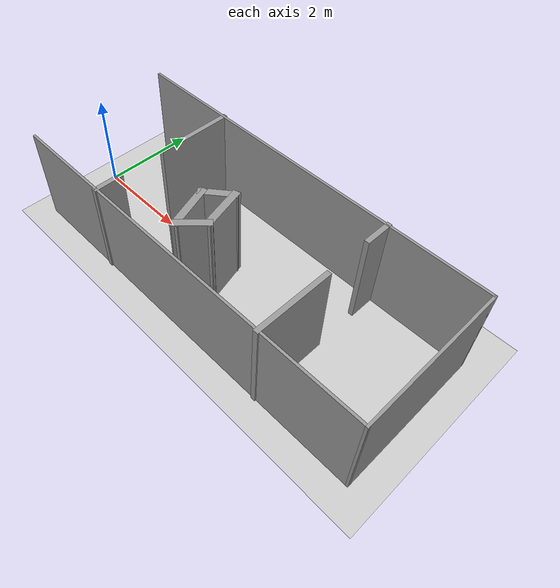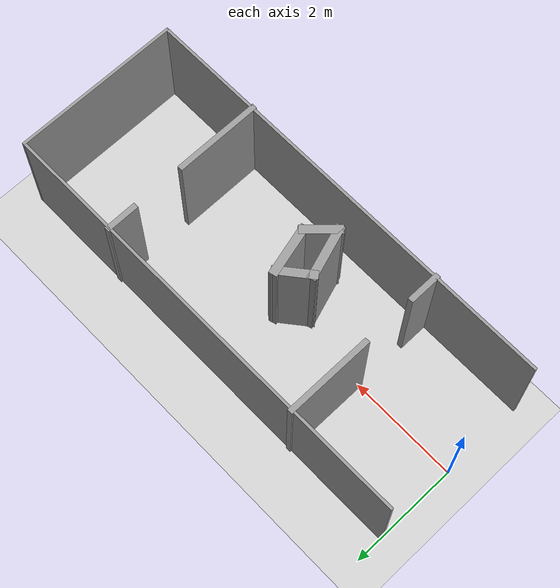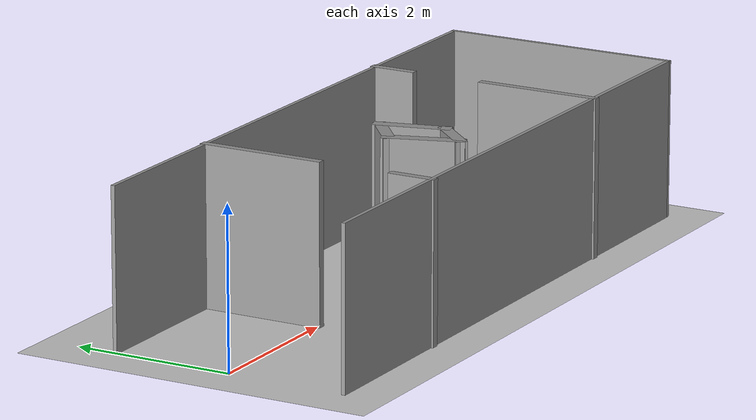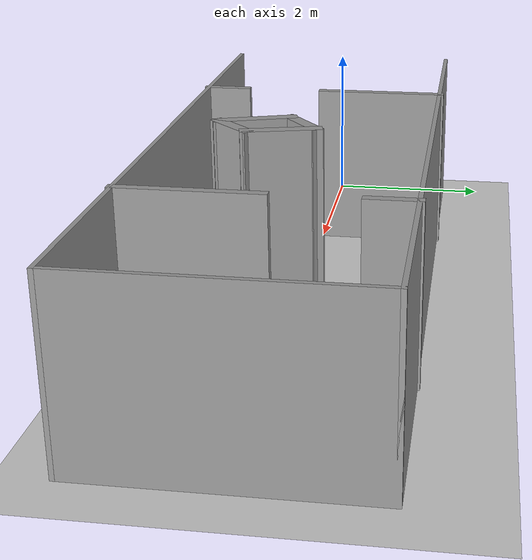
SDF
<?xml version="1.0" ?>
<sdf version="1.5">
  <world name="default">
    <!-- A global light source -->
    <include>
      <uri>model://sun</uri>
    </include>
    <!-- A ground plane -->
    <include>
      <uri>model://ground_plane</uri>
    </include>
    <include>
      <uri>model://asphalt_plane</uri>
    </include>
    <include>
    <name>group_A</name>
      <uri>model://group_A</uri>
      <pose>4 0 0 0 0 -1.57</pose>
    </include>
    <physics name='default_physics' default='0' type='ode'>
      <gravity>0 0 -9.8066</gravity>
      <ode>
        <solver>
          <type>quick</type>
          <iters>10</iters>
          <sor>1.3</sor>
          <use_dynamic_moi_rescaling>0</use_dynamic_moi_rescaling>
        </solver>
        <constraints>
          <cfm>0</cfm>
          <erp>0.2</erp>
          <contact_max_correcting_vel>100</contact_max_correcting_vel>
          <contact_surface_layer>0.001</contact_surface_layer>
        </constraints>
      </ode>
      <max_step_size>0.004</max_step_size>
      <real_time_factor>1</real_time_factor>
      <real_time_update_rate>250</real_time_update_rate>
      <magnetic_field>6.0e-6 2.3e-5 -4.2e-5</magnetic_field>
    </physics>
  </world>
</sdf>

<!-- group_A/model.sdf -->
<sdf version='1.6'>
  <model name='group_A'>
    <pose frame=''>0 4 0 0 -0 0</pose>
    <link name='Wall_0'>
      <collision name='Wall_0_Collision'>
        <geometry>
          <box>
            <size>8.05 0.05 2</size>
          </box>
        </geometry>
        <pose frame=''>0 0 1 0 -0 0</pose>
      </collision>
      <visual name='Wall_0_Visual'>
        <pose frame=''>0 0 1 0 -0 0</pose>
        <geometry>
          <box>
            <size>8.05 0.05 2</size>
          </box>
        </geometry>
        <material>
          <script>
            <uri>file://media/materials/scripts/gazebo.material</uri>
            <name>Gazebo/Grey</name>
          </script>
          <ambient>1 1 1 1</ambient>
        </material>
      </visual>
      <pose frame=''>-1.5 0 0 0 -0 1.5708</pose>
    </link>
    <link name='Wall_1'>
      <collision name='Wall_1_Collision'>
        <geometry>
          <box>
            <size>3.05004 0.05 2</size>
          </box>
        </geometry>
        <pose frame=''>0 0 1 0 -0 0</pose>
      </collision>
      <visual name='Wall_1_Visual'>
        <pose frame=''>0 0 1 0 -0 0</pose>
        <geometry>
          <box>
            <size>3.05004 0.05 2</size>
          </box>
        </geometry>
        <material>
          <script>
            <uri>file://media/materials/scripts/gazebo.material</uri>
            <name>Gazebo/Grey</name>
          </script>
          <ambient>1 1 1 1</ambient>
        </material>
      </visual>
      <pose frame=''>0 4 0 0 -0 0</pose>
    </link>
    <link name='Wall_10'>
      <collision name='Wall_10_Collision'>
        <geometry>
          <box>
            <size>1.6 0.1 2</size>
          </box>
        </geometry>
        <pose frame=''>0 0 1 0 -0 0</pose>
      </collision>
      <visual name='Wall_10_Visual'>
        <pose frame=''>0 0 1 0 -0 0</pose>
        <geometry>
          <box>
            <size>1.6 0.1 2</size>
          </box>
        </geometry>
        <material>
          <script>
            <uri>file://media/materials/scripts/gazebo.material</uri>
            <name>Gazebo/Grey</name>
          </script>
          <ambient>1 1 1 1</ambient>
        </material>
      </visual>
      <pose frame=''>0.75 2 0 0 -0 0</pose>
    </link>
    <link name='Wall_12'>
      <collision name='Wall_12_Collision'>
        <geometry>
          <box>
            <size>0.728011 0.15 2</size>
          </box>
        </geometry>
        <pose frame=''>0 0 1 0 -0 0</pose>
      </collision>
      <visual name='Wall_12_Visual'>
        <pose frame=''>0 0 1 0 -0 0</pose>
        <geometry>
          <box>
            <size>0.728011 0.15 2</size>
          </box>
        </geometry>
        <material>
          <script>
            <uri>file://media/materials/scripts/gazebo.material</uri>
            <name>Gazebo/Grey</name>
          </script>
          <ambient>1 1 1 1</ambient>
        </material>
      </visual>
      <pose frame=''>0.0225 -0.483 0 0 -0 2.25202</pose>
    </link>
    <link name='Wall_13'>
      <collision name='Wall_13_Collision'>
        <geometry>
          <box>
            <size>0.953171 0.15 2</size>
          </box>
        </geometry>
        <pose frame=''>0 0 1 0 -0 0</pose>
      </collision>
      <visual name='Wall_13_Visual'>
        <pose frame=''>0 0 1 0 -0 0</pose>
        <geometry>
          <box>
            <size>0.953171 0.15 2</size>
          </box>
        </geometry>
        <material>
          <script>
            <uri>file://media/materials/scripts/gazebo.material</uri>
            <name>Gazebo/Grey</name>
          </script>
          <ambient>1 1 1 1</ambient>
        </material>
      </visual>
      <pose frame=''>0.218 -0.15875 0 0 -0 0.251018</pose>
    </link>
    <link name='Wall_14'>
      <collision name='Wall_14_Collision'>
        <geometry>
          <box>
            <size>0.700204 0.15 2</size>
          </box>
        </geometry>
        <pose frame=''>0 0 1 0 -0 0</pose>
      </collision>
      <visual name='Wall_14_Visual'>
        <pose frame=''>0 0 1 0 -0 0</pose>
        <geometry>
          <box>
            <size>0.700204 0.15 2</size>
          </box>
        </geometry>
        <material>
          <script>
            <uri>file://media/materials/scripts/gazebo.material</uri>
            <name>Gazebo/Grey</name>
          </script>
          <ambient>1 1 1 1</ambient>
        </material>
      </visual>
      <pose frame=''>0.8065 -0.2485 0 0 0 -0.759697</pose>
    </link>
    <link name='Wall_15'>
      <collision name='Wall_15_Collision'>
        <geometry>
          <box>
            <size>1.0065 0.15 2</size>
          </box>
        </geometry>
        <pose frame=''>0 0 1 0 -0 0</pose>
      </collision>
      <visual name='Wall_15_Visual'>
        <pose frame=''>0 0 1 0 -0 0</pose>
        <geometry>
          <box>
            <size>1.0065 0.15 2</size>
          </box>
        </geometry>
        <material>
          <script>
            <uri>file://media/materials/scripts/gazebo.material</uri>
            <name>Gazebo/Grey</name>
          </script>
          <ambient>1 1 1 1</ambient>
        </material>
      </visual>
      <pose frame=''>0.5995 -0.57275 0 0 0 -2.8215</pose>
    </link>
    <link name='Wall_2'>
      <collision name='Wall_2_Collision'>
        <geometry>
          <box>
            <size>8.05 0.05 2</size>
          </box>
        </geometry>
        <pose frame=''>0 0 1 0 -0 0</pose>
      </collision>
      <visual name='Wall_2_Visual'>
        <pose frame=''>0 0 1 0 -0 0</pose>
        <geometry>
          <box>
            <size>8.05 0.05 2</size>
          </box>
        </geometry>
        <material>
          <script>
            <uri>file://media/materials/scripts/gazebo.material</uri>
            <name>Gazebo/Grey</name>
          </script>
          <ambient>1 1 1 1</ambient>
        </material>
      </visual>
      <pose frame=''>1.5 0 0 0 0 -1.5708</pose>
    </link>
    <link name='Wall_4'>
      <collision name='Wall_4_Collision'>
        <geometry>
          <box>
            <size>1.6 0.1 2</size>
          </box>
        </geometry>
        <pose frame=''>0 0 1 0 -0 0</pose>
      </collision>
      <visual name='Wall_4_Visual'>
        <pose frame=''>0 0 1 0 -0 0</pose>
        <geometry>
          <box>
            <size>1.6 0.1 2</size>
          </box>
        </geometry>
        <material>
          <script>
            <uri>file://media/materials/scripts/gazebo.material</uri>
            <name>Gazebo/Grey</name>
          </script>
          <ambient>1 1 1 1</ambient>
        </material>
      </visual>
      <pose frame=''>-0.75 -2 0 0 -0 0</pose>
    </link>
    <link name='Wall_6'>
      <collision name='Wall_6_Collision'>
        <geometry>
          <box>
            <size>0.6 0.1 2</size>
          </box>
        </geometry>
        <pose frame=''>0 0 1 0 -0 0</pose>
      </collision>
      <visual name='Wall_6_Visual'>
        <pose frame=''>0 0 1 0 -0 0</pose>
        <geometry>
          <box>
            <size>0.6 0.1 2</size>
          </box>
        </geometry>
        <material>
          <script>
            <uri>file://media/materials/scripts/gazebo.material</uri>
            <name>Gazebo/Grey</name>
          </script>
          <ambient>1 1 1 1</ambient>
        </material>
      </visual>
      <pose frame=''>1.25 -2 0 0 -0 0</pose>
    </link>
    <link name='Wall_8'>
      <collision name='Wall_8_Collision'>
        <geometry>
          <box>
            <size>0.6 0.1 2</size>
          </box>
        </geometry>
        <pose frame=''>0 0 1 0 -0 0</pose>
      </collision>
      <visual name='Wall_8_Visual'>
        <pose frame=''>0 0 1 0 -0 0</pose>
        <geometry>
          <box>
            <size>0.6 0.1 2</size>
          </box>
        </geometry>
        <material>
          <script>
            <uri>file://media/materials/scripts/gazebo.material</uri>
            <name>Gazebo/Grey</name>
          </script>
          <ambient>1 1 1 1</ambient>
        </material>
      </visual>
      <pose frame=''>-1.25 2 0 0 -0 0</pose>
    </link>
    <static>1</static>
  </model>
</sdf>
